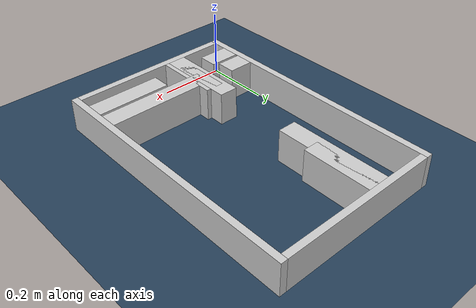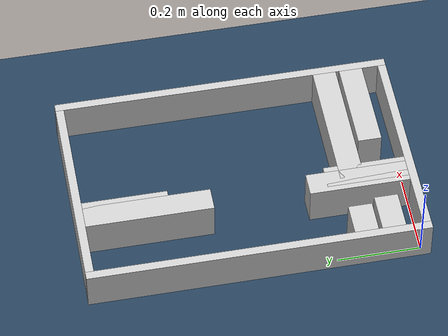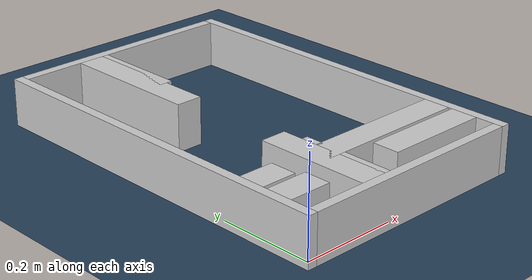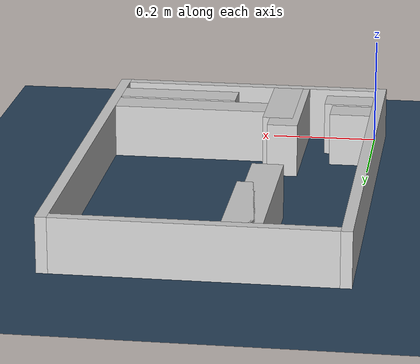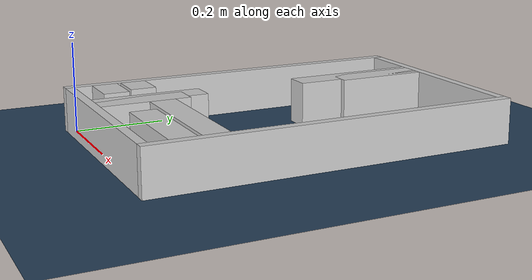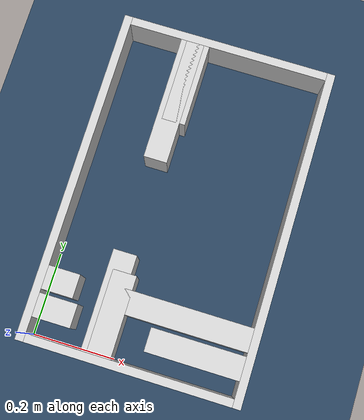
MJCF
<?xml version="1.0" ?>
<mujoco model="generated_real_template">
  <compiler angle="degree"/>
  <option timestep="0.002" integrator="implicitfast" iterations="100" cone="elliptic"/>
  <default>
    <geom density="1"/>
  </default>
  <asset>
    <texture builtin="gradient" height="3072" rgb1="0.3 0.5 0.7" rgb2="0 0 0" type="skybox" width="512"/>
    <texture builtin="checker" height="300" mark="edge" markrgb="0.8 0.8 0.8" name="groundplane" rgb1="0.2 0.3 0.4" rgb2="0.1 0.2 0.3" type="2d" width="300"/>
    <material name="groundplane" reflectance="0.2" texrepeat="5 5" texture="groundplane" texuniform="true"/>
  </asset>
  <worldbody>
    <light dir="0 0 -1" directional="true" pos="0 0 1.5"/>
    <geom name="floor" type="plane" condim="4" friction="0.5 0.005 0.001" material="groundplane" size="0 0 0.05"/>
    <body name="walls">
      <geom name="wall_boundary_left" type="box" condim="4" friction="1.0 0.005 0.0001" rgba="0.8 0.8 0.8 1" pos="-0.010000 0.387500 0.050000" euler="0 0 0.000000" size="0.010000 0.407500 0.050000"/>
      <geom name="wall_boundary_right" type="box" condim="4" friction="1.0 0.005 0.0001" rgba="0.8 0.8 0.8 1" pos="0.500000 0.387500 0.050000" euler="0 0 0.000000" size="0.010000 0.407500 0.050000"/>
      <geom name="wall_boundary_bottom" type="box" condim="4" friction="1.0 0.005 0.0001" rgba="0.8 0.8 0.8 1" pos="0.245000 -0.010000 0.050000" euler="0 0 0.000000" size="0.245000 0.010000 0.050000"/>
      <geom name="wall_boundary_top" type="box" condim="4" friction="1.0 0.005 0.0001" rgba="0.8 0.8 0.8 1" pos="0.245000 0.785000 0.050000" euler="0 0 0.000000" size="0.245000 0.010000 0.050000"/>
      <geom name="wall_inner_1_1" type="box" condim="4" friction="1.0 0.005 0.0001" rgba="0.8 0.8 0.8 1" pos="0.045820 0.067947 0.050000" euler="0 0 0.000000" size="0.045820 0.028500 0.050000"/>
      <geom name="wall_inner_1_2" type="box" condim="4" friction="1.0 0.005 0.0001" rgba="0.8 0.8 0.8 1" pos="0.377957 0.067947 0.050000" euler="0 0 0.000000" size="0.112043 0.028500 0.050000"/>
      <geom name="wall_inner_2_1" type="box" condim="4" friction="1.0 0.005 0.0001" rgba="0.8 0.8 0.8 1" pos="0.171701 0.098164 0.050000" euler="0 0 90.000000" size="0.098164 0.028500 0.050000"/>
      <geom name="wall_inner_2_2" type="box" condim="4" friction="1.0 0.005 0.0001" rgba="0.8 0.8 0.8 1" pos="0.171701 0.672733 0.050000" euler="0 0 90.000000" size="0.102267 0.028500 0.050000"/>
      <geom name="wall_inner_3_1" type="box" condim="4" friction="1.0 0.005 0.0001" rgba="0.8 0.8 0.8 1" pos="0.037907 0.133445 0.050000" euler="0 0 0.000000" size="0.037907 0.028500 0.050000"/>
      <geom name="wall_inner_3_2" type="box" condim="4" friction="1.0 0.005 0.0001" rgba="0.8 0.8 0.8 1" pos="0.326318 0.133445 0.050000" euler="0 0 0.000000" size="0.163682 0.028500 0.050000"/>
      <geom name="wall_inner_4_1" type="box" condim="4" friction="1.0 0.005 0.0001" rgba="0.8 0.8 0.8 1" pos="0.158200 0.120624 0.050000" euler="0 0 90.000000" size="0.120624 0.028500 0.050000"/>
      <geom name="wall_inner_4_2" type="box" condim="4" friction="1.0 0.005 0.0001" rgba="0.8 0.8 0.8 1" pos="0.158200 0.622459 0.050000" euler="0 0 90.000000" size="0.152541 0.028500 0.050000"/>
    </body>
  </worldbody>
</mujoco>
